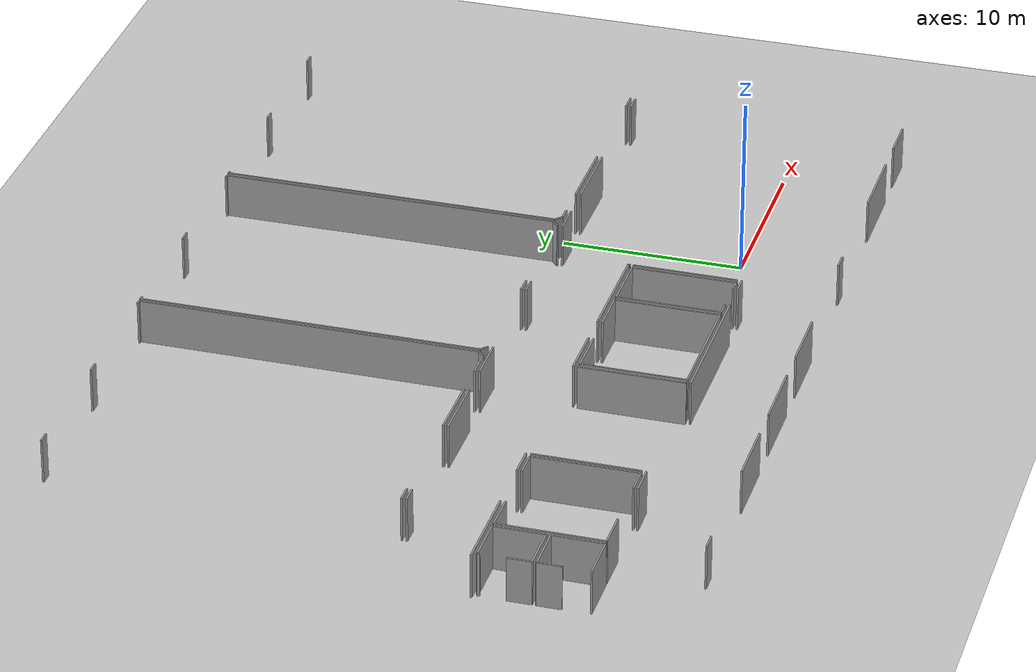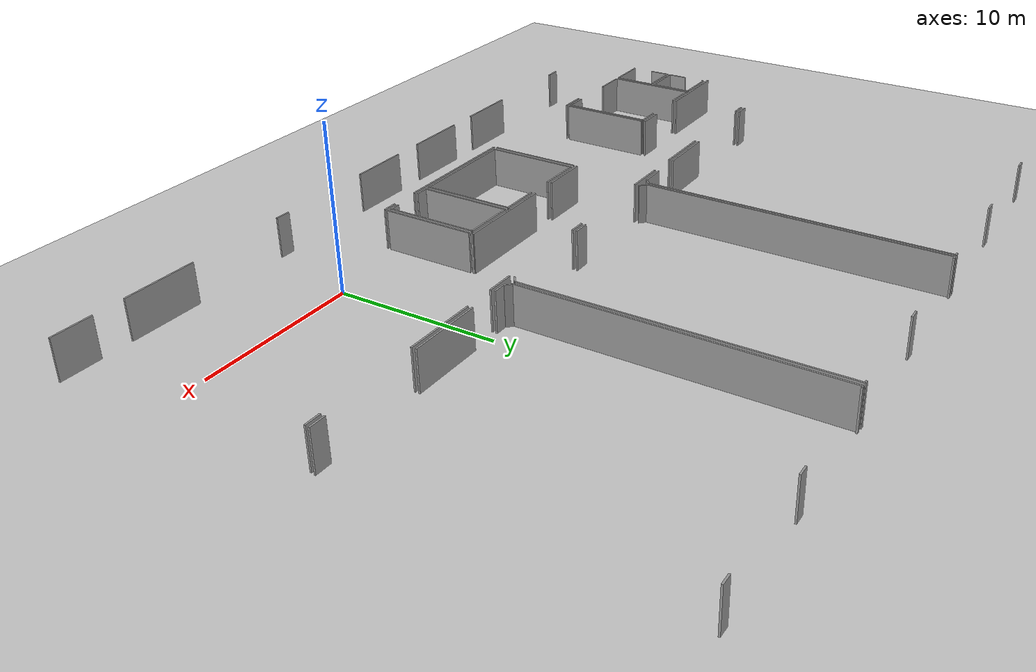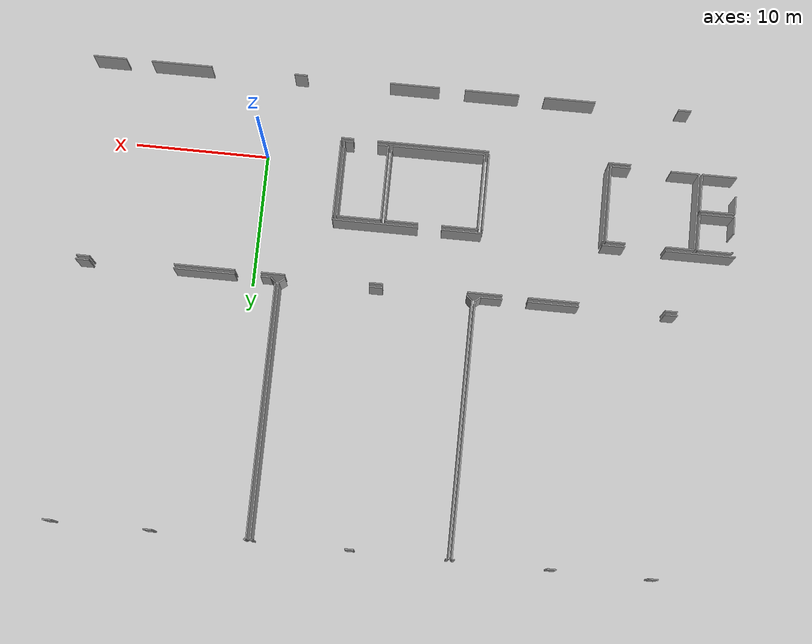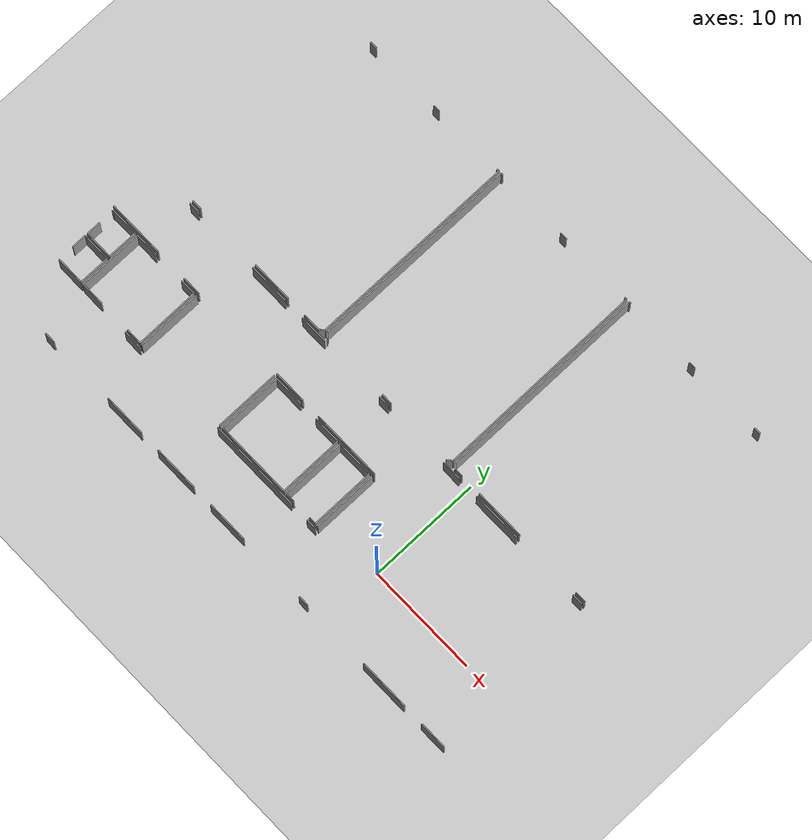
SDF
<sdf version="1.6">
 <world name="default">
  <model name="ground_plane">
   <static>1</static>
   <link name="link">
    <collision name="collision">
     <geometry><plane><normal>0 0 1</normal><size>100 100</size></plane></geometry>
     <surface><friction><ode><mu>100</mu><mu2>50</mu2></ode></friction></surface>
    </collision>
    <visual name="visual">
     <cast_shadows>0</cast_shadows>
     <geometry><plane><normal>0 0 1</normal><size>100 100</size></plane></geometry>
     <material>
      <script><uri>file://media/materials/scripts/gazebo.material</uri><name>Gazebo/Grey</name></script>
     </material>
    </visual>
   </link>
  </model>
  <model name="0510032218_A-40">
   <static>1</static>
   <link name="Wall_14">
    <collision name="Wall_14_Collision">
     <geometry><box><size>0.940691143338 0.1 2.5</size></box></geometry>
     <pose>0.470345571669 0 1.25 0 0 0</pose>
    </collision>
    <visual name="Wall_14_Visual">
     <pose>0.470345571669 0 1.25 0 0 0</pose>
     <geometry><box><size>0.940691143338 0.1 2.5</size></box></geometry>
     <material>
      <script><uri>file://media/materials/scripts/gazebo.material</uri><name>Gazebo/Grey</name></script>
      <ambient>1 1 1 1</ambient>
     </material>
    </visual>
    <pose>43.5658553613 -40.3395424111 0 0 0 0.0</pose>
   </link>
   <link name="Wall_15">
    <collision name="Wall_15_Collision">
     <geometry><box><size>3.72303493796 0.1 2.5</size></box></geometry>
     <pose>1.86151746898 0 1.25 0 0 0</pose>
    </collision>
    <visual name="Wall_15_Visual">
     <pose>1.86151746898 0 1.25 0 0 0</pose>
     <geometry><box><size>3.72303493796 0.1 2.5</size></box></geometry>
     <material>
      <script><uri>file://media/materials/scripts/gazebo.material</uri><name>Gazebo/Grey</name></script>
      <ambient>1 1 1 1</ambient>
     </material>
    </visual>
    <pose>50.7551423222 -40.3395424111 0 0 0 0.0</pose>
   </link>
   <link name="Wall_16">
    <collision name="Wall_16_Collision">
     <geometry><box><size>2.55412052169 0.1 2.5</size></box></geometry>
     <pose>1.27706026084 0 1.25 0 0 0</pose>
    </collision>
    <visual name="Wall_16_Visual">
     <pose>1.27706026084 0 1.25 0 0 0</pose>
     <geometry><box><size>2.55412052169 0.1 2.5</size></box></geometry>
     <material>
      <script><uri>file://media/materials/scripts/gazebo.material</uri><name>Gazebo/Grey</name></script>
      <ambient>1 1 1 1</ambient>
     </material>
    </visual>
    <pose>56.3851997588 -40.3395424111 0 0 0 0.0</pose>
   </link>
   <link name="Wall_17">
    <collision name="Wall_17_Collision">
     <geometry><box><size>0.99819122267 0.1 2.5</size></box></geometry>
     <pose>0.499095611335 0 1.25 0 0 0</pose>
    </collision>
    <visual name="Wall_17_Visual">
     <pose>0.499095611335 0 1.25 0 0 0</pose>
     <geometry><box><size>0.99819122267 0.1 2.5</size></box></geometry>
     <material>
      <script><uri>file://media/materials/scripts/gazebo.material</uri><name>Gazebo/Grey</name></script>
      <ambient>1 1 1 1</ambient>
     </material>
    </visual>
    <pose>65.1226731825 -40.3395424111 0 0 0 0.0</pose>
   </link>
   <link name="Wall_18">
    <collision name="Wall_18_Collision">
     <geometry><box><size>1.7439152096 0.1 2.5</size></box></geometry>
     <pose>0.871957604798 0 1.25 0 0 0</pose>
    </collision>
    <visual name="Wall_18_Visual">
     <pose>0.871957604798 0 1.25 0 0 0</pose>
     <geometry><box><size>1.7439152096 0.1 2.5</size></box></geometry>
     <material>
      <script><uri>file://media/materials/scripts/gazebo.material</uri><name>Gazebo/Grey</name></script>
      <ambient>1 1 1 1</ambient>
     </material>
    </visual>
    <pose>72.3388696728 -40.3395424111 0 0 0 0.0</pose>
   </link>
   <link name="Wall_19">
    <collision name="Wall_19_Collision">
     <geometry><box><size>4.49249516073 0.1 2.5</size></box></geometry>
     <pose>2.24624758036 0 1.25 0 0 0</pose>
    </collision>
    <visual name="Wall_19_Visual">
     <pose>2.24624758036 0 1.25 0 0 0</pose>
     <geometry><box><size>4.49249516073 0.1 2.5</size></box></geometry>
     <material>
      <script><uri>file://media/materials/scripts/gazebo.material</uri><name>Gazebo/Grey</name></script>
      <ambient>1 1 1 1</ambient>
     </material>
    </visual>
    <pose>76.003135214 -40.3395424111 0 0 0 0.0</pose>
   </link>
   <link name="Wall_20">
    <collision name="Wall_20_Collision">
     <geometry><box><size>0.982324754863 0.1 2.5</size></box></geometry>
     <pose>0.491162377432 0 1.25 0 0 0</pose>
    </collision>
    <visual name="Wall_20_Visual">
     <pose>0.491162377432 0 1.25 0 0 0</pose>
     <geometry><box><size>0.982324754863 0.1 2.5</size></box></geometry>
     <material>
      <script><uri>file://media/materials/scripts/gazebo.material</uri><name>Gazebo/Grey</name></script>
      <ambient>1 1 1 1</ambient>
     </material>
    </visual>
    <pose>86.7097007584 -40.3395424111 0 0 0 0.0</pose>
   </link>
   <link name="Wall_28">
    <collision name="Wall_28_Collision">
     <geometry><box><size>0.110430615936 0.1 2.5</size></box></geometry>
     <pose>0.0552153079681 0 1.25 0 0 0</pose>
    </collision>
    <visual name="Wall_28_Visual">
     <pose>0.0552153079681 0 1.25 0 0 0</pose>
     <geometry><box><size>0.110430615936 0.1 2.5</size></box></geometry>
     <material>
      <script><uri>file://media/materials/scripts/gazebo.material</uri><name>Gazebo/Grey</name></script>
      <ambient>1 1 1 1</ambient>
     </material>
    </visual>
    <pose>69.3035509155 -44.9575730651 0 0 0 1.57079632679</pose>
   </link>
   <link name="Wall_29">
    <collision name="Wall_29_Collision">
     <geometry><box><size>6.3024148764 0.1 2.5</size></box></geometry>
     <pose>3.1512074382 0 1.25 0 0 0</pose>
    </collision>
    <visual name="Wall_29_Visual">
     <pose>3.1512074382 0 1.25 0 0 0</pose>
     <geometry><box><size>6.3024148764 0.1 2.5</size></box></geometry>
     <material>
      <script><uri>file://media/materials/scripts/gazebo.material</uri><name>Gazebo/Grey</name></script>
      <ambient>1 1 1 1</ambient>
     </material>
    </visual>
    <pose>69.3035509155 -44.8471424491 0 0 0 3.14159265359</pose>
   </link>
   <link name="Wall_30">
    <collision name="Wall_30_Collision">
     <geometry><box><size>2.98023038111 0.1 2.5</size></box></geometry>
     <pose>1.49011519056 0 1.25 0 0 0</pose>
    </collision>
    <visual name="Wall_30_Visual">
     <pose>1.49011519056 0 1.25 0 0 0</pose>
     <geometry><box><size>2.98023038111 0.1 2.5</size></box></geometry>
     <material>
      <script><uri>file://media/materials/scripts/gazebo.material</uri><name>Gazebo/Grey</name></script>
      <ambient>1 1 1 1</ambient>
     </material>
    </visual>
    <pose>61.2461777679 -44.8471424491 0 0 0 3.14159265359</pose>
   </link>
   <link name="Wall_31">
    <collision name="Wall_31_Collision">
     <geometry><box><size>1.65772855647 0.1 2.5</size></box></geometry>
     <pose>0.828864278234 0 1.25 0 0 0</pose>
    </collision>
    <visual name="Wall_31_Visual">
     <pose>0.828864278234 0 1.25 0 0 0</pose>
     <geometry><box><size>1.65772855647 0.1 2.5</size></box></geometry>
     <material>
      <script><uri>file://media/materials/scripts/gazebo.material</uri><name>Gazebo/Grey</name></script>
      <ambient>1 1 1 1</ambient>
     </material>
    </visual>
    <pose>49.3807254149 -44.8471424491 0 0 0 3.14159265359</pose>
   </link>
   <link name="Wall_32">
    <collision name="Wall_32_Collision">
     <geometry><box><size>5.12372671596 0.1 2.5</size></box></geometry>
     <pose>2.56186335798 0 1.25 0 0 0</pose>
    </collision>
    <visual name="Wall_32_Visual">
     <pose>2.56186335798 0 1.25 0 0 0</pose>
     <geometry><box><size>5.12372671596 0.1 2.5</size></box></geometry>
     <material>
      <script><uri>file://media/materials/scripts/gazebo.material</uri><name>Gazebo/Grey</name></script>
      <ambient>1 1 1 1</ambient>
     </material>
    </visual>
    <pose>44.7388315933 -44.8471424491 0 0 0 3.14159265359</pose>
   </link>
   <link name="Wall_37">
    <collision name="Wall_37_Collision">
     <geometry><box><size>1.5723034938 0.1 2.5</size></box></geometry>
     <pose>0.786151746898 0 1.25 0 0 0</pose>
    </collision>
    <visual name="Wall_37_Visual">
     <pose>0.786151746898 0 1.25 0 0 0</pose>
     <geometry><box><size>1.5723034938 0.1 2.5</size></box></geometry>
     <material>
      <script><uri>file://media/materials/scripts/gazebo.material</uri><name>Gazebo/Grey</name></script>
      <ambient>1 1 1 1</ambient>
     </material>
    </visual>
    <pose>57.930212928 -40.0724780249 0 0 0 3.14159265359</pose>
   </link>
   <link name="Wall_38">
    <collision name="Wall_38_Collision">
     <geometry><box><size>3.73585504395 0.1 2.5</size></box></geometry>
     <pose>1.86792752198 0 1.25 0 0 0</pose>
    </collision>
    <visual name="Wall_38_Visual">
     <pose>1.86792752198 0 1.25 0 0 0</pose>
     <geometry><box><size>3.73585504395 0.1 2.5</size></box></geometry>
     <material>
      <script><uri>file://media/materials/scripts/gazebo.material</uri><name>Gazebo/Grey</name></script>
      <ambient>1 1 1 1</ambient>
     </material>
    </visual>
    <pose>54.4800812363 -40.0724780249 0 0 0 3.14159265359</pose>
   </link>
   <link name="Wall_39">
    <collision name="Wall_39_Collision">
     <geometry><box><size>0.926474788183 0.1 2.5</size></box></geometry>
     <pose>0.463237394091 0 1.25 0 0 0</pose>
    </collision>
    <visual name="Wall_39_Visual">
     <pose>0.463237394091 0 1.25 0 0 0</pose>
     <geometry><box><size>0.926474788183 0.1 2.5</size></box></geometry>
     <material>
      <script><uri>file://media/materials/scripts/gazebo.material</uri><name>Gazebo/Grey</name></script>
      <ambient>1 1 1 1</ambient>
     </material>
    </visual>
    <pose>44.4848411767 -40.0724780249 0 0 0 3.14159265359</pose>
   </link>
   <link name="Wall_45">
    <collision name="Wall_45_Collision">
     <geometry><box><size>0.659791197284 0.1 2.5</size></box></geometry>
     <pose>0.329895598642 0 1.25 0 0 0</pose>
    </collision>
    <visual name="Wall_45_Visual">
     <pose>0.329895598642 0 1.25 0 0 0</pose>
     <geometry><box><size>0.659791197284 0.1 2.5</size></box></geometry>
     <material>
      <script><uri>file://media/materials/scripts/gazebo.material</uri><name>Gazebo/Grey</name></script>
      <ambient>1 1 1 1</ambient>
     </material>
    </visual>
    <pose>43.6850442674 -21.0113921239 0 0 0 0.0</pose>
   </link>
   <link name="Wall_46">
    <collision name="Wall_46_Collision">
     <geometry><box><size>0.658521879859 0.1 2.5</size></box></geometry>
     <pose>0.32926093993 0 1.25 0 0 0</pose>
    </collision>
    <visual name="Wall_46_Visual">
     <pose>0.32926093993 0 1.25 0 0 0</pose>
     <geometry><box><size>0.658521879859 0.1 2.5</size></box></geometry>
     <material>
      <script><uri>file://media/materials/scripts/gazebo.material</uri><name>Gazebo/Grey</name></script>
      <ambient>1 1 1 1</ambient>
     </material>
    </visual>
    <pose>50.8959096246 -21.0113921239 0 0 0 0.0</pose>
   </link>
   <link name="Wall_47">
    <collision name="Wall_47_Collision">
     <geometry><box><size>0.220861231873 0.1 2.5</size></box></geometry>
     <pose>0.110430615936 0 1.25 0 0 0</pose>
    </collision>
    <visual name="Wall_47_Visual">
     <pose>0.110430615936 0 1.25 0 0 0</pose>
     <geometry><box><size>0.220861231873 0.1 2.5</size></box></geometry>
     <material>
      <script><uri>file://media/materials/scripts/gazebo.material</uri><name>Gazebo/Grey</name></script>
      <ambient>1 1 1 1</ambient>
     </material>
    </visual>
    <pose>58.0967473741 -21.0113921239 0 0 0 0.0</pose>
   </link>
   <link name="Wall_48">
    <collision name="Wall_48_Collision">
     <geometry><box><size>18.7206549678 0.1 2.5</size></box></geometry>
     <pose>9.3603274839 0 1.25 0 0 0</pose>
    </collision>
    <visual name="Wall_48_Visual">
     <pose>9.3603274839 0 1.25 0 0 0</pose>
     <geometry><box><size>18.7206549678 0.1 2.5</size></box></geometry>
     <material>
      <script><uri>file://media/materials/scripts/gazebo.material</uri><name>Gazebo/Grey</name></script>
      <ambient>1 1 1 1</ambient>
     </material>
    </visual>
    <pose>58.317608606 -21.0113921239 0 0 0 -1.57079632679</pose>
   </link>
   <link name="Wall_49">
    <collision name="Wall_49_Collision">
     <geometry><box><size>0.515721467109 0.1 2.5</size></box></geometry>
     <pose>0.257860733555 0 1.25 0 0 0</pose>
    </collision>
    <visual name="Wall_49_Visual">
     <pose>0.257860733555 0 1.25 0 0 0</pose>
     <geometry><box><size>0.515721467109 0.1 2.5</size></box></geometry>
     <material>
      <script><uri>file://media/materials/scripts/gazebo.material</uri><name>Gazebo/Grey</name></script>
      <ambient>1 1 1 1</ambient>
     </material>
    </visual>
    <pose>58.317608606 -39.7320470917 0 0 0 -2.42063253448</pose>
   </link>
   <link name="Wall_50">
    <collision name="Wall_50_Collision">
     <geometry><box><size>0.561299929679 0.1 2.5</size></box></geometry>
     <pose>0.280649964839 0 1.25 0 0 0</pose>
    </collision>
    <visual name="Wall_50_Visual">
     <pose>0.280649964839 0 1.25 0 0 0</pose>
     <geometry><box><size>0.561299929679 0.1 2.5</size></box></geometry>
     <material>
      <script><uri>file://media/materials/scripts/gazebo.material</uri><name>Gazebo/Grey</name></script>
      <ambient>1 1 1 1</ambient>
     </material>
    </visual>
    <pose>72.7282962587 -39.722019484 0 0 0 -2.46755805064</pose>
   </link>
   <link name="Wall_51">
    <collision name="Wall_51_Collision">
     <geometry><box><size>0.993367816457 0.1 2.5</size></box></geometry>
     <pose>0.496683908228 0 1.25 0 0 0</pose>
    </collision>
    <visual name="Wall_51_Visual">
     <pose>0.496683908228 0 1.25 0 0 0</pose>
     <geometry><box><size>0.993367816457 0.1 2.5</size></box></geometry>
     <material>
      <script><uri>file://media/materials/scripts/gazebo.material</uri><name>Gazebo/Grey</name></script>
      <ambient>1 1 1 1</ambient>
     </material>
    </visual>
    <pose>66.1246723574 -40.0723510932 0 0 0 3.14159265359</pose>
   </link>
   <link name="Wall_52">
    <collision name="Wall_52_Collision">
     <geometry><box><size>0.511678212058 0.1 2.5</size></box></geometry>
     <pose>0.255839106029 0 1.25 0 0 0</pose>
    </collision>
    <visual name="Wall_52_Visual">
     <pose>0.255839106029 0 1.25 0 0 0</pose>
     <geometry><box><size>0.511678212058 0.1 2.5</size></box></geometry>
     <material>
      <script><uri>file://media/materials/scripts/gazebo.material</uri><name>Gazebo/Grey</name></script>
      <ambient>1 1 1 1</ambient>
     </material>
    </visual>
    <pose>58.9238346079 -40.0723510932 0 0 0 2.37373655025</pose>
   </link>
   <link name="Wall_53">
    <collision name="Wall_53_Collision">
     <geometry><box><size>18.7103734967 0.1 2.5</size></box></geometry>
     <pose>9.35518674833 0 1.25 0 0 0</pose>
    </collision>
    <visual name="Wall_53_Visual">
     <pose>9.35518674833 0 1.25 0 0 0</pose>
     <geometry><box><size>18.7103734967 0.1 2.5</size></box></geometry>
     <material>
      <script><uri>file://media/materials/scripts/gazebo.material</uri><name>Gazebo/Grey</name></script>
      <ambient>1 1 1 1</ambient>
     </material>
    </visual>
    <pose>58.5557325548 -39.7169422143 0 0 0 1.57079632679</pose>
   </link>
   <link name="Wall_54">
    <collision name="Wall_54_Collision">
     <geometry><box><size>0.203598514899 0.1 2.5</size></box></geometry>
     <pose>0.101799257449 0 1.25 0 0 0</pose>
    </collision>
    <visual name="Wall_54_Visual">
     <pose>0.101799257449 0 1.25 0 0 0</pose>
     <geometry><box><size>0.203598514899 0.1 2.5</size></box></geometry>
     <material>
      <script><uri>file://media/materials/scripts/gazebo.material</uri><name>Gazebo/Grey</name></script>
      <ambient>1 1 1 1</ambient>
     </material>
    </visual>
    <pose>58.5557325548 -21.0065687177 0 0 0 0.0</pose>
   </link>
   <link name="Wall_55">
    <collision name="Wall_55_Collision">
     <geometry><box><size>0.648875067432 0.1 2.5</size></box></geometry>
     <pose>0.324437533716 0 1.25 0 0 0</pose>
    </collision>
    <visual name="Wall_55_Visual">
     <pose>0.324437533716 0 1.25 0 0 0</pose>
     <geometry><box><size>0.648875067432 0.1 2.5</size></box></geometry>
     <material>
      <script><uri>file://media/materials/scripts/gazebo.material</uri><name>Gazebo/Grey</name></script>
      <ambient>1 1 1 1</ambient>
     </material>
    </visual>
    <pose>65.2859074033 -21.0065687177 0 0 0 0.0</pose>
   </link>
   <link name="Wall_56">
    <collision name="Wall_56_Collision">
     <geometry><box><size>0.195094088154 0.1 2.5</size></box></geometry>
     <pose>0.097547044077 0 1.25 0 0 0</pose>
    </collision>
    <visual name="Wall_56_Visual">
     <pose>0.097547044077 0 1.25 0 0 0</pose>
     <geometry><box><size>0.195094088154 0.1 2.5</size></box></geometry>
     <material>
      <script><uri>file://media/materials/scripts/gazebo.material</uri><name>Gazebo/Grey</name></script>
      <ambient>1 1 1 1</ambient>
     </material>
    </visual>
    <pose>72.4778599308 -21.0065687177 0 0 0 0.0</pose>
   </link>
   <link name="Wall_57">
    <collision name="Wall_57_Collision">
     <geometry><box><size>18.7155325906 0.1 2.5</size></box></geometry>
     <pose>9.35776629532 0 1.25 0 0 0</pose>
    </collision>
    <visual name="Wall_57_Visual">
     <pose>9.35776629532 0 1.25 0 0 0</pose>
     <geometry><box><size>18.7155325906 0.1 2.5</size></box></geometry>
     <material>
      <script><uri>file://media/materials/scripts/gazebo.material</uri><name>Gazebo/Grey</name></script>
      <ambient>1 1 1 1</ambient>
     </material>
    </visual>
    <pose>72.672954019 -21.0065687177 0 0 0 -1.56783930059</pose>
   </link>
   <link name="Wall_61">
    <collision name="Wall_61_Collision">
     <geometry><box><size>1.0078380351 0.1 2.5</size></box></geometry>
     <pose>0.503919017548 0 1.25 0 0 0</pose>
    </collision>
    <visual name="Wall_61_Visual">
     <pose>0.503919017548 0 1.25 0 0 0</pose>
     <geometry><box><size>1.0078380351 0.1 2.5</size></box></geometry>
     <material>
      <script><uri>file://media/materials/scripts/gazebo.material</uri><name>Gazebo/Grey</name></script>
      <ambient>1 1 1 1</ambient>
     </material>
    </visual>
    <pose>87.7353092375 -40.0642274617 0 0 0 3.14159265359</pose>
   </link>
   <link name="Wall_62">
    <collision name="Wall_62_Collision">
     <geometry><box><size>4.51102719513 0.1 2.5</size></box></geometry>
     <pose>2.25551359756 0 1.25 0 0 0</pose>
    </collision>
    <visual name="Wall_62_Visual">
     <pose>2.25551359756 0 1.25 0 0 0</pose>
     <geometry><box><size>4.51102719513 0.1 2.5</size></box></geometry>
     <material>
      <script><uri>file://media/materials/scripts/gazebo.material</uri><name>Gazebo/Grey</name></script>
      <ambient>1 1 1 1</ambient>
     </material>
    </visual>
    <pose>80.4985498048 -40.0642274617 0 0 0 3.14159265359</pose>
   </link>
   <link name="Wall_63">
    <collision name="Wall_63_Collision">
     <geometry><box><size>0.750547393139 0.1 2.5</size></box></geometry>
     <pose>0.37527369657 0 1.25 0 0 0</pose>
    </collision>
    <visual name="Wall_63_Visual">
     <pose>0.37527369657 0 1.25 0 0 0</pose>
     <geometry><box><size>0.750547393139 0.1 2.5</size></box></geometry>
     <material>
      <script><uri>file://media/materials/scripts/gazebo.material</uri><name>Gazebo/Grey</name></script>
      <ambient>1 1 1 1</ambient>
     </material>
    </visual>
    <pose>74.0827848824 -40.0642274617 0 0 0 3.14159265359</pose>
   </link>
   <link name="Wall_64">
    <collision name="Wall_64_Collision">
     <geometry><box><size>0.50440146294 0.1 2.5</size></box></geometry>
     <pose>0.25220073147 0 1.25 0 0 0</pose>
    </collision>
    <visual name="Wall_64_Visual">
     <pose>0.25220073147 0 1.25 0 0 0</pose>
     <geometry><box><size>0.50440146294 0.1 2.5</size></box></geometry>
     <material>
      <script><uri>file://media/materials/scripts/gazebo.material</uri><name>Gazebo/Grey</name></script>
      <ambient>1 1 1 1</ambient>
     </material>
    </visual>
    <pose>73.3322374893 -40.0642274617 0 0 0 2.37309980249</pose>
   </link>
   <link name="Wall_65">
    <collision name="Wall_65_Collision">
     <geometry><box><size>18.6967918002 0.1 2.5</size></box></geometry>
     <pose>9.3483959001 0 1.25 0 0 0</pose>
    </collision>
    <visual name="Wall_65_Visual">
     <pose>9.3483959001 0 1.25 0 0 0</pose>
     <geometry><box><size>18.6967918002 0.1 2.5</size></box></geometry>
     <material>
      <script><uri>file://media/materials/scripts/gazebo.material</uri><name>Gazebo/Grey</name></script>
      <ambient>1 1 1 1</ambient>
     </material>
    </visual>
    <pose>72.9695935011 -39.713641989 0 0 0 1.57079632679</pose>
   </link>
   <link name="Wall_66">
    <collision name="Wall_66_Collision">
     <geometry><box><size>0.163995811252 0.1 2.5</size></box></geometry>
     <pose>0.0819979056262 0 1.25 0 0 0</pose>
    </collision>
    <visual name="Wall_66_Visual">
     <pose>0.0819979056262 0 1.25 0 0 0</pose>
     <geometry><box><size>0.163995811252 0.1 2.5</size></box></geometry>
     <material>
      <script><uri>file://media/materials/scripts/gazebo.material</uri><name>Gazebo/Grey</name></script>
      <ambient>1 1 1 1</ambient>
     </material>
    </visual>
    <pose>72.9695935011 -21.0168501888 0 0 0 0.0</pose>
   </link>
   <link name="Wall_67">
    <collision name="Wall_67_Collision">
     <geometry><box><size>0.649001999175 0.1 2.5</size></box></geometry>
     <pose>0.324500999587 0 1.25 0 0 0</pose>
    </collision>
    <visual name="Wall_67_Visual">
     <pose>0.324500999587 0 1.25 0 0 0</pose>
     <geometry><box><size>0.649001999175 0.1 2.5</size></box></geometry>
     <material>
      <script><uri>file://media/materials/scripts/gazebo.material</uri><name>Gazebo/Grey</name></script>
      <ambient>1 1 1 1</ambient>
     </material>
    </visual>
    <pose>79.6700663218 -21.0168501888 0 0 0 0.0</pose>
   </link>
   <link name="Wall_68">
    <collision name="Wall_68_Collision">
     <geometry><box><size>0.635039507505 0.1 2.5</size></box></geometry>
     <pose>0.317519753752 0 1.25 0 0 0</pose>
    </collision>
    <visual name="Wall_68_Visual">
     <pose>0.317519753752 0 1.25 0 0 0</pose>
     <geometry><box><size>0.635039507505 0.1 2.5</size></box></geometry>
     <material>
      <script><uri>file://media/materials/scripts/gazebo.material</uri><name>Gazebo/Grey</name></script>
      <ambient>1 1 1 1</ambient>
     </material>
    </visual>
    <pose>86.8921016723 -21.0168501888 0 0 0 0.0</pose>
   </link>
   <link name="Wall_264">
    <collision name="Wall_264_Collision">
     <geometry><box><size>1.65468219465 0.1 2.5</size></box></geometry>
     <pose>0.827341097325 0 1.25 0 0 0</pose>
    </collision>
    <visual name="Wall_264_Visual">
     <pose>0.827341097325 0 1.25 0 0 0</pose>
     <geometry><box><size>1.65468219465 0.1 2.5</size></box></geometry>
     <material>
      <script><uri>file://media/materials/scripts/gazebo.material</uri><name>Gazebo/Grey</name></script>
      <ambient>1 1 1 1</ambient>
     </material>
    </visual>
    <pose>47.7288357186 -51.0990384921 0 0 0 0.0</pose>
   </link>
   <link name="Wall_265">
    <collision name="Wall_265_Collision">
     <geometry><box><size>8.31275981341 0.1 2.5</size></box></geometry>
     <pose>4.15637990671 0 1.25 0 0 0</pose>
    </collision>
    <visual name="Wall_265_Visual">
     <pose>4.15637990671 0 1.25 0 0 0</pose>
     <geometry><box><size>8.31275981341 0.1 2.5</size></box></geometry>
     <material>
      <script><uri>file://media/materials/scripts/gazebo.material</uri><name>Gazebo/Grey</name></script>
      <ambient>1 1 1 1</ambient>
     </material>
    </visual>
    <pose>58.28803351 -51.0990384921 0 0 0 0.0</pose>
   </link>
   <link name="Wall_266">
    <collision name="Wall_266_Collision">
     <geometry><box><size>0.943102846444 0.1 2.5</size></box></geometry>
     <pose>0.471551423222 0 1.25 0 0 0</pose>
    </collision>
    <visual name="Wall_266_Visual">
     <pose>0.471551423222 0 1.25 0 0 0</pose>
     <geometry><box><size>0.943102846444 0.1 2.5</size></box></geometry>
     <material>
      <script><uri>file://media/materials/scripts/gazebo.material</uri><name>Gazebo/Grey</name></script>
      <ambient>1 1 1 1</ambient>
     </material>
    </visual>
    <pose>68.3626059087 -51.0990384921 0 0 0 0.0</pose>
   </link>
   <link name="Wall_276">
    <collision name="Wall_276_Collision">
     <geometry><box><size>2.47237647955 0.1 2.5</size></box></geometry>
     <pose>1.23618823977 0 1.25 0 0 0</pose>
    </collision>
    <visual name="Wall_276_Visual">
     <pose>1.23618823977 0 1.25 0 0 0</pose>
     <geometry><box><size>2.47237647955 0.1 2.5</size></box></geometry>
     <material>
      <script><uri>file://media/materials/scripts/gazebo.material</uri><name>Gazebo/Grey</name></script>
      <ambient>1 1 1 1</ambient>
     </material>
    </visual>
    <pose>88.453615968 -55.6711198553 0 0 0 3.14159265359</pose>
   </link>
   <link name="Wall_277">
    <collision name="Wall_277_Collision">
     <geometry><box><size>4.53984070066 0.1 2.5</size></box></geometry>
     <pose>2.26992035033 0 1.25 0 0 0</pose>
    </collision>
    <visual name="Wall_277_Visual">
     <pose>2.26992035033 0 1.25 0 0 0</pose>
     <geometry><box><size>4.53984070066 0.1 2.5</size></box></geometry>
     <material>
      <script><uri>file://media/materials/scripts/gazebo.material</uri><name>Gazebo/Grey</name></script>
      <ambient>1 1 1 1</ambient>
     </material>
    </visual>
    <pose>84.0688858566 -55.6711198553 0 0 0 3.14159265359</pose>
   </link>
   <link name="Wall_278">
    <collision name="Wall_278_Collision">
     <geometry><box><size>0.950211024022 0.1 2.5</size></box></geometry>
     <pose>0.475105512011 0 1.25 0 0 0</pose>
    </collision>
    <visual name="Wall_278_Visual">
     <pose>0.475105512011 0 1.25 0 0 0</pose>
     <geometry><box><size>0.950211024022 0.1 2.5</size></box></geometry>
     <material>
      <script><uri>file://media/materials/scripts/gazebo.material</uri><name>Gazebo/Grey</name></script>
      <ambient>1 1 1 1</ambient>
     </material>
    </visual>
    <pose>73.290476946 -55.6711198553 0 0 0 3.14159265359</pose>
   </link>
   <link name="Wall_279">
    <collision name="Wall_279_Collision">
     <geometry><box><size>3.72392346016 0.1 2.5</size></box></geometry>
     <pose>1.86196173008 0 1.25 0 0 0</pose>
    </collision>
    <visual name="Wall_279_Visual">
     <pose>1.86196173008 0 1.25 0 0 0</pose>
     <geometry><box><size>3.72392346016 0.1 2.5</size></box></geometry>
     <material>
      <script><uri>file://media/materials/scripts/gazebo.material</uri><name>Gazebo/Grey</name></script>
      <ambient>1 1 1 1</ambient>
     </material>
    </visual>
    <pose>66.1016977121 -55.6711198553 0 0 0 3.14159265359</pose>
   </link>
   <link name="Wall_280">
    <collision name="Wall_280_Collision">
     <geometry><box><size>4.0588963285 0.1 2.5</size></box></geometry>
     <pose>2.02944816425 0 1.25 0 0 0</pose>
    </collision>
    <visual name="Wall_280_Visual">
     <pose>2.02944816425 0 1.25 0 0 0</pose>
     <geometry><box><size>4.0588963285 0.1 2.5</size></box></geometry>
     <material>
      <script><uri>file://media/materials/scripts/gazebo.material</uri><name>Gazebo/Grey</name></script>
      <ambient>1 1 1 1</ambient>
     </material>
    </visual>
    <pose>60.4666899375 -55.6711198553 0 0 0 3.14159265359</pose>
   </link>
   <link name="Wall_281">
    <collision name="Wall_281_Collision">
     <geometry><box><size>3.79525909942 0.1 2.5</size></box></geometry>
     <pose>1.89762954971 0 1.25 0 0 0</pose>
    </collision>
    <visual name="Wall_281_Visual">
     <pose>1.89762954971 0 1.25 0 0 0</pose>
     <geometry><box><size>3.79525909942 0.1 2.5</size></box></geometry>
     <material>
      <script><uri>file://media/materials/scripts/gazebo.material</uri><name>Gazebo/Grey</name></script>
      <ambient>1 1 1 1</ambient>
     </material>
    </visual>
    <pose>54.5066099705 -55.6711198553 0 0 0 3.14159265359</pose>
   </link>
   <link name="Wall_282">
    <collision name="Wall_282_Collision">
     <geometry><box><size>0.951480341446 0.1 2.5</size></box></geometry>
     <pose>0.475740170723 0 1.25 0 0 0</pose>
    </collision>
    <visual name="Wall_282_Visual">
     <pose>0.475740170723 0 1.25 0 0 0</pose>
     <geometry><box><size>0.951480341446 0.1 2.5</size></box></geometry>
     <material>
      <script><uri>file://media/materials/scripts/gazebo.material</uri><name>Gazebo/Grey</name></script>
      <ambient>1 1 1 1</ambient>
     </material>
    </visual>
    <pose>44.5014692349 -55.6711198553 0 0 0 3.14159265359</pose>
   </link>
   <link name="Wall_406">
    <collision name="Wall_406_Collision">
     <geometry><box><size>2.54625075366 0.1 2.5</size></box></geometry>
     <pose>1.27312537683 0 1.25 0 0 0</pose>
    </collision>
    <visual name="Wall_406_Visual">
     <pose>1.27312537683 0 1.25 0 0 0</pose>
     <geometry><box><size>2.54625075366 0.1 2.5</size></box></geometry>
     <material>
      <script><uri>file://media/materials/scripts/gazebo.material</uri><name>Gazebo/Grey</name></script>
      <ambient>1 1 1 1</ambient>
     </material>
    </visual>
    <pose>42.4084917336 -47.8622790594 0 0 0 3.14159265359</pose>
   </link>
   <link name="Wall_407">
    <collision name="Wall_407_Collision">
     <geometry><box><size>1.30066956494 0.1 2.5</size></box></geometry>
     <pose>0.650334782471 0 1.25 0 0 0</pose>
    </collision>
    <visual name="Wall_407_Visual">
     <pose>0.650334782471 0 1.25 0 0 0</pose>
     <geometry><box><size>1.30066956494 0.1 2.5</size></box></geometry>
     <material>
      <script><uri>file://media/materials/scripts/gazebo.material</uri><name>Gazebo/Grey</name></script>
      <ambient>1 1 1 1</ambient>
     </material>
    </visual>
    <pose>39.8622409799 -47.8622790594 0 0 0 1.57079632679</pose>
   </link>
   <link name="Wall_408">
    <collision name="Wall_408_Collision">
     <geometry><box><size>0.116142544347 0.1 2.5</size></box></geometry>
     <pose>0.0580712721734 0 1.25 0 0 0</pose>
    </collision>
    <visual name="Wall_408_Visual">
     <pose>0.0580712721734 0 1.25 0 0 0</pose>
     <geometry><box><size>0.116142544347 0.1 2.5</size></box></geometry>
     <material>
      <script><uri>file://media/materials/scripts/gazebo.material</uri><name>Gazebo/Grey</name></script>
      <ambient>1 1 1 1</ambient>
     </material>
    </visual>
    <pose>39.8622409799 -45.2139751848 0 0 0 1.57079632679</pose>
   </link>
   <link name="Wall_409">
    <collision name="Wall_409_Collision">
     <geometry><box><size>2.54701234411 0.1 2.5</size></box></geometry>
     <pose>1.27350617206 0 1.25 0 0 0</pose>
    </collision>
    <visual name="Wall_409_Visual">
     <pose>1.27350617206 0 1.25 0 0 0</pose>
     <geometry><box><size>2.54701234411 0.1 2.5</size></box></geometry>
     <material>
      <script><uri>file://media/materials/scripts/gazebo.material</uri><name>Gazebo/Grey</name></script>
      <ambient>1 1 1 1</ambient>
     </material>
    </visual>
    <pose>39.8622409799 -45.0978326405 0 0 0 0.0</pose>
   </link>
   <link name="Wall_410">
    <collision name="Wall_410_Collision">
     <geometry><box><size>2.76444652385 0.1 2.5</size></box></geometry>
     <pose>1.38222326192 0 1.25 0 0 0</pose>
    </collision>
    <visual name="Wall_410_Visual">
     <pose>1.38222326192 0 1.25 0 0 0</pose>
     <geometry><box><size>2.76444652385 0.1 2.5</size></box></geometry>
     <material>
      <script><uri>file://media/materials/scripts/gazebo.material</uri><name>Gazebo/Grey</name></script>
      <ambient>1 1 1 1</ambient>
     </material>
    </visual>
    <pose>42.409253324 -45.0978326405 0 0 0 -1.57107182153</pose>
   </link>
   <link name="Wall_411">
    <collision name="Wall_411_Collision">
     <geometry><box><size>2.55589756608 0.1 2.5</size></box></geometry>
     <pose>1.27794878304 0 1.25 0 0 0</pose>
    </collision>
    <visual name="Wall_411_Visual">
     <pose>1.27794878304 0 1.25 0 0 0</pose>
     <geometry><box><size>2.55589756608 0.1 2.5</size></box></geometry>
     <material>
      <script><uri>file://media/materials/scripts/gazebo.material</uri><name>Gazebo/Grey</name></script>
      <ambient>1 1 1 1</ambient>
     </material>
    </visual>
    <pose>42.4145844572 -50.8719576048 0 0 0 3.14159265359</pose>
   </link>
   <link name="Wall_413">
    <collision name="Wall_413_Collision">
     <geometry><box><size>1.31260114873 0.1 2.5</size></box></geometry>
     <pose>0.656300574366 0 1.25 0 0 0</pose>
    </collision>
    <visual name="Wall_413_Visual">
     <pose>0.656300574366 0 1.25 0 0 0</pose>
     <geometry><box><size>1.31260114873 0.1 2.5</size></box></geometry>
     <material>
      <script><uri>file://media/materials/scripts/gazebo.material</uri><name>Gazebo/Grey</name></script>
      <ambient>1 1 1 1</ambient>
     </material>
    </visual>
    <pose>39.8586868911 -49.4077999556 0 0 0 1.57079632679</pose>
   </link>
   <link name="Wall_414">
    <collision name="Wall_414_Collision">
     <geometry><box><size>2.56224415321 0.1 2.5</size></box></geometry>
     <pose>1.2811220766 0 1.25 0 0 0</pose>
    </collision>
    <visual name="Wall_414_Visual">
     <pose>1.2811220766 0 1.25 0 0 0</pose>
     <geometry><box><size>2.56224415321 0.1 2.5</size></box></geometry>
     <material>
      <script><uri>file://media/materials/scripts/gazebo.material</uri><name>Gazebo/Grey</name></script>
      <ambient>1 1 1 1</ambient>
     </material>
    </visual>
    <pose>39.8586868911 -48.0951988068 0 0 0 0.0</pose>
   </link>
   <link name="Wall_415">
    <collision name="Wall_415_Collision">
     <geometry><box><size>2.77676605086 0.1 2.5</size></box></geometry>
     <pose>1.38838302543 0 1.25 0 0 0</pose>
    </collision>
    <visual name="Wall_415_Visual">
     <pose>1.38838302543 0 1.25 0 0 0</pose>
     <geometry><box><size>2.77676605086 0.1 2.5</size></box></geometry>
     <material>
      <script><uri>file://media/materials/scripts/gazebo.material</uri><name>Gazebo/Grey</name></script>
      <ambient>1 1 1 1</ambient>
     </material>
    </visual>
    <pose>42.4209310443 -48.0951988068 0 0 0 -1.57308193262</pose>
   </link>
   <link name="Wall_416">
    <collision name="Wall_416_Collision">
     <geometry><box><size>1.46301526354 0.1 2.5</size></box></geometry>
     <pose>0.731507631771 0 1.25 0 0 0</pose>
    </collision>
    <visual name="Wall_416_Visual">
     <pose>0.731507631771 0 1.25 0 0 0</pose>
     <geometry><box><size>1.46301526354 0.1 2.5</size></box></geometry>
     <material>
      <script><uri>file://media/materials/scripts/gazebo.material</uri><name>Gazebo/Grey</name></script>
      <ambient>1 1 1 1</ambient>
     </material>
    </visual>
    <pose>49.1836004189 -50.8722114683 0 0 0 3.14159265359</pose>
   </link>
   <link name="Wall_417">
    <collision name="Wall_417_Collision">
     <geometry><box><size>2.0895503443 0.1 2.5</size></box></geometry>
     <pose>1.04477517215 0 1.25 0 0 0</pose>
    </collision>
    <visual name="Wall_417_Visual">
     <pose>1.04477517215 0 1.25 0 0 0</pose>
     <geometry><box><size>2.0895503443 0.1 2.5</size></box></geometry>
     <material>
      <script><uri>file://media/materials/scripts/gazebo.material</uri><name>Gazebo/Grey</name></script>
      <ambient>1 1 1 1</ambient>
     </material>
    </visual>
    <pose>44.7450512487 -50.8722114683 0 0 0 3.14159265359</pose>
   </link>
   <link name="Wall_418">
    <collision name="Wall_418_Collision">
     <geometry><box><size>5.76473201536 0.1 2.5</size></box></geometry>
     <pose>2.88236600768 0 1.25 0 0 0</pose>
    </collision>
    <visual name="Wall_418_Visual">
     <pose>2.88236600768 0 1.25 0 0 0</pose>
     <geometry><box><size>5.76473201536 0.1 2.5</size></box></geometry>
     <material>
      <script><uri>file://media/materials/scripts/gazebo.material</uri><name>Gazebo/Grey</name></script>
      <ambient>1 1 1 1</ambient>
     </material>
    </visual>
    <pose>42.6555009044 -50.8722114683 0 0 0 1.57079632679</pose>
   </link>
   <link name="Wall_419">
    <collision name="Wall_419_Collision">
     <geometry><box><size>2.09627772665 0.1 2.5</size></box></geometry>
     <pose>1.04813886333 0 1.25 0 0 0</pose>
    </collision>
    <visual name="Wall_419_Visual">
     <pose>1.04813886333 0 1.25 0 0 0</pose>
     <geometry><box><size>2.09627772665 0.1 2.5</size></box></geometry>
     <material>
      <script><uri>file://media/materials/scripts/gazebo.material</uri><name>Gazebo/Grey</name></script>
      <ambient>1 1 1 1</ambient>
     </material>
    </visual>
    <pose>42.6555009044 -45.1074794529 0 0 0 0.0</pose>
   </link>
   <link name="Wall_420">
    <collision name="Wall_420_Collision">
     <geometry><box><size>1.43344016755 0.1 2.5</size></box></geometry>
     <pose>0.716720083775 0 1.25 0 0 0</pose>
    </collision>
    <visual name="Wall_420_Visual">
     <pose>0.716720083775 0 1.25 0 0 0</pose>
     <geometry><box><size>1.43344016755 0.1 2.5</size></box></geometry>
     <material>
      <script><uri>file://media/materials/scripts/gazebo.material</uri><name>Gazebo/Grey</name></script>
      <ambient>1 1 1 1</ambient>
     </material>
    </visual>
    <pose>47.7147462952 -45.1074794529 0 0 0 0.0</pose>
   </link>
   <link name="Wall_421">
    <collision name="Wall_421_Collision">
     <geometry><box><size>5.76484079201 0.1 2.5</size></box></geometry>
     <pose>2.882420396 0 1.25 0 0 0</pose>
    </collision>
    <visual name="Wall_421_Visual">
     <pose>2.882420396 0 1.25 0 0 0</pose>
     <geometry><box><size>5.76484079201 0.1 2.5</size></box></geometry>
     <material>
      <script><uri>file://media/materials/scripts/gazebo.material</uri><name>Gazebo/Grey</name></script>
      <ambient>1 1 1 1</ambient>
     </material>
    </visual>
    <pose>49.1481864627 -45.1074794529 0 0 0 -1.56465319463</pose>
   </link>
   <link name="Wall_422">
    <collision name="Wall_422_Collision">
     <geometry><box><size>5.81778948371 0.1 2.5</size></box></geometry>
     <pose>2.90889474185 0 1.25 0 0 0</pose>
    </collision>
    <visual name="Wall_422_Visual">
     <pose>2.90889474185 0 1.25 0 0 0</pose>
     <geometry><box><size>5.81778948371 0.1 2.5</size></box></geometry>
     <material>
      <script><uri>file://media/materials/scripts/gazebo.material</uri><name>Gazebo/Grey</name></script>
      <ambient>1 1 1 1</ambient>
     </material>
    </visual>
    <pose>58.2596007997 -50.8958207724 0 0 0 1.57079632679</pose>
   </link>
   <link name="Wall_423">
    <collision name="Wall_423_Collision">
     <geometry><box><size>5.81778948371 0.1 2.5</size></box></geometry>
     <pose>2.90889474185 0 1.25 0 0 0</pose>
    </collision>
    <visual name="Wall_423_Visual">
     <pose>2.90889474185 0 1.25 0 0 0</pose>
     <geometry><box><size>5.81778948371 0.1 2.5</size></box></geometry>
     <material>
      <script><uri>file://media/materials/scripts/gazebo.material</uri><name>Gazebo/Grey</name></script>
      <ambient>1 1 1 1</ambient>
     </material>
    </visual>
    <pose>49.3917684765 -45.0780312887 0 0 0 -1.57079632679</pose>
   </link>
   <link name="Wall_424">
    <collision name="Wall_424_Collision">
     <geometry><box><size>6.89848633897 0.1 2.5</size></box></geometry>
     <pose>3.44924316949 0 1.25 0 0 0</pose>
    </collision>
    <visual name="Wall_424_Visual">
     <pose>3.44924316949 0 1.25 0 0 0</pose>
     <geometry><box><size>6.89848633897 0.1 2.5</size></box></geometry>
     <material>
      <script><uri>file://media/materials/scripts/gazebo.material</uri><name>Gazebo/Grey</name></script>
      <ambient>1 1 1 1</ambient>
     </material>
    </visual>
    <pose>65.4735125186 -50.851648526 0 0 0 3.14159265359</pose>
   </link>
   <link name="Wall_425">
    <collision name="Wall_425_Collision">
     <geometry><box><size>5.73515691937 0.1 2.5</size></box></geometry>
     <pose>2.86757845968 0 1.25 0 0 0</pose>
    </collision>
    <visual name="Wall_425_Visual">
     <pose>2.86757845968 0 1.25 0 0 0</pose>
     <geometry><box><size>5.73515691937 0.1 2.5</size></box></geometry>
     <material>
      <script><uri>file://media/materials/scripts/gazebo.material</uri><name>Gazebo/Grey</name></script>
      <ambient>1 1 1 1</ambient>
     </material>
    </visual>
    <pose>58.5750261797 -50.851648526 0 0 0 1.57079632679</pose>
   </link>
   <link name="Wall_426">
    <collision name="Wall_426_Collision">
     <geometry><box><size>2.68346396725 0.1 2.5</size></box></geometry>
     <pose>1.34173198363 0 1.25 0 0 0</pose>
    </collision>
    <visual name="Wall_426_Visual">
     <pose>1.34173198363 0 1.25 0 0 0</pose>
     <geometry><box><size>2.68346396725 0.1 2.5</size></box></geometry>
     <material>
      <script><uri>file://media/materials/scripts/gazebo.material</uri><name>Gazebo/Grey</name></script>
      <ambient>1 1 1 1</ambient>
     </material>
    </visual>
    <pose>58.5750261797 -45.1164916066 0 0 0 0.0</pose>
   </link>
   <link name="Wall_427">
    <collision name="Wall_427_Collision">
     <geometry><box><size>2.46133341795 0.1 2.5</size></box></geometry>
     <pose>1.23066670898 0 1.25 0 0 0</pose>
    </collision>
    <visual name="Wall_427_Visual">
     <pose>1.23066670898 0 1.25 0 0 0</pose>
     <geometry><box><size>2.46133341795 0.1 2.5</size></box></geometry>
     <material>
      <script><uri>file://media/materials/scripts/gazebo.material</uri><name>Gazebo/Grey</name></script>
      <ambient>1 1 1 1</ambient>
     </material>
    </visual>
    <pose>63.0121791007 -45.1164916066 0 0 0 0.0</pose>
   </link>
   <link name="Wall_428">
    <collision name="Wall_428_Collision">
     <geometry><box><size>5.73515691937 0.1 2.5</size></box></geometry>
     <pose>2.86757845968 0 1.25 0 0 0</pose>
    </collision>
    <visual name="Wall_428_Visual">
     <pose>2.86757845968 0 1.25 0 0 0</pose>
     <geometry><box><size>5.73515691937 0.1 2.5</size></box></geometry>
     <material>
      <script><uri>file://media/materials/scripts/gazebo.material</uri><name>Gazebo/Grey</name></script>
      <ambient>1 1 1 1</ambient>
     </material>
    </visual>
    <pose>65.4735125186 -45.1164916066 0 0 0 -1.57079632679</pose>
   </link>
   <link name="Wall_429">
    <collision name="Wall_429_Collision">
     <geometry><box><size>0.653063814934 0.1 2.5</size></box></geometry>
     <pose>0.326531907467 0 1.25 0 0 0</pose>
    </collision>
    <visual name="Wall_429_Visual">
     <pose>0.326531907467 0 1.25 0 0 0</pose>
     <geometry><box><size>0.653063814934 0.1 2.5</size></box></geometry>
     <material>
      <script><uri>file://media/materials/scripts/gazebo.material</uri><name>Gazebo/Grey</name></script>
      <ambient>1 1 1 1</ambient>
     </material>
    </visual>
    <pose>69.021889379 -50.847205915 0 0 0 3.14159265359</pose>
   </link>
   <link name="Wall_430">
    <collision name="Wall_430_Collision">
     <geometry><box><size>0.815917240504 0.1 2.5</size></box></geometry>
     <pose>0.407958620252 0 1.25 0 0 0</pose>
    </collision>
    <visual name="Wall_430_Visual">
     <pose>0.407958620252 0 1.25 0 0 0</pose>
     <geometry><box><size>0.815917240504 0.1 2.5</size></box></geometry>
     <material>
      <script><uri>file://media/materials/scripts/gazebo.material</uri><name>Gazebo/Grey</name></script>
      <ambient>1 1 1 1</ambient>
     </material>
    </visual>
    <pose>66.5816266303 -50.847205915 0 0 0 3.14159265359</pose>
   </link>
   <link name="Wall_431">
    <collision name="Wall_431_Collision">
     <geometry><box><size>5.72754101482 0.1 2.5</size></box></geometry>
     <pose>2.86377050741 0 1.25 0 0 0</pose>
    </collision>
    <visual name="Wall_431_Visual">
     <pose>2.86377050741 0 1.25 0 0 0</pose>
     <geometry><box><size>5.72754101482 0.1 2.5</size></box></geometry>
     <material>
      <script><uri>file://media/materials/scripts/gazebo.material</uri><name>Gazebo/Grey</name></script>
      <ambient>1 1 1 1</ambient>
     </material>
    </visual>
    <pose>65.7657093898 -50.847205915 0 0 0 1.57079632679</pose>
   </link>
   <link name="Wall_432">
    <collision name="Wall_432_Collision">
     <geometry><box><size>3.25617998921 0.1 2.5</size></box></geometry>
     <pose>1.62808999461 0 1.25 0 0 0</pose>
    </collision>
    <visual name="Wall_432_Visual">
     <pose>1.62808999461 0 1.25 0 0 0</pose>
     <geometry><box><size>3.25617998921 0.1 2.5</size></box></geometry>
     <material>
      <script><uri>file://media/materials/scripts/gazebo.material</uri><name>Gazebo/Grey</name></script>
      <ambient>1 1 1 1</ambient>
     </material>
    </visual>
    <pose>65.7657093898 -45.1196649002 0 0 0 0.0</pose>
   </link>
   <link name="Wall_433">
    <collision name="Wall_433_Collision">
     <geometry><box><size>5.72754101482 0.1 2.5</size></box></geometry>
     <pose>2.86377050741 0 1.25 0 0 0</pose>
    </collision>
    <visual name="Wall_433_Visual">
     <pose>2.86377050741 0 1.25 0 0 0</pose>
     <geometry><box><size>5.72754101482 0.1 2.5</size></box></geometry>
     <material>
      <script><uri>file://media/materials/scripts/gazebo.material</uri><name>Gazebo/Grey</name></script>
      <ambient>1 1 1 1</ambient>
     </material>
    </visual>
    <pose>69.021889379 -45.1196649002 0 0 0 -1.57079632679</pose>
   </link>
   <link name="Wall_435">
    <collision name="Wall_435_Collision">
     <geometry><box><size>5.7658883726 0.1 2.5</size></box></geometry>
     <pose>2.8829441863 0 1.25 0 0 0</pose>
    </collision>
    <visual name="Wall_435_Visual">
     <pose>2.8829441863 0 1.25 0 0 0</pose>
     <geometry><box><size>5.7658883726 0.1 2.5</size></box></geometry>
     <material>
      <script><uri>file://media/materials/scripts/gazebo.material</uri><name>Gazebo/Grey</name></script>
      <ambient>1 1 1 1</ambient>
     </material>
    </visual>
    <pose>69.3068511408 -45.1083679751 0 0 0 -1.57299775417</pose>
   </link>
   <pose>-74.8 49.7517929109 0 0 0 0</pose>
  </model>
 </world>
</sdf>
